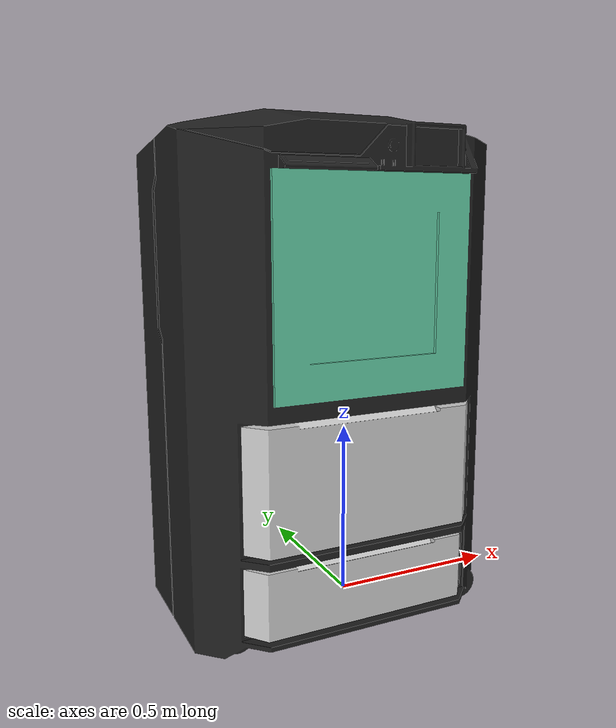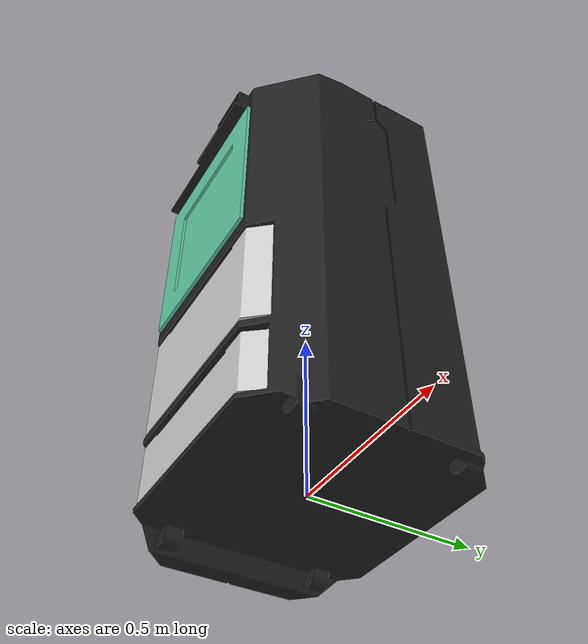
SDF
<?xml version='1.0'?>
<sdf version='1.6'>
  <model name='stratasys3DPrinter'>
    <static>1</static>
    <link name='link'>
      <visual name='visual'>
        <geometry>
          <mesh>
            <uri>stratasys.dae</uri>
            <scale>1 1 1</scale>
          </mesh>
        </geometry>
      </visual>
      <collision name='collision'>
        <geometry>
          <mesh>
            <uri>stratasys.dae</uri>
            <scale>1 1 1</scale>
          </mesh>
        </geometry>
      </collision>
    </link>
  </model>
</sdf>
